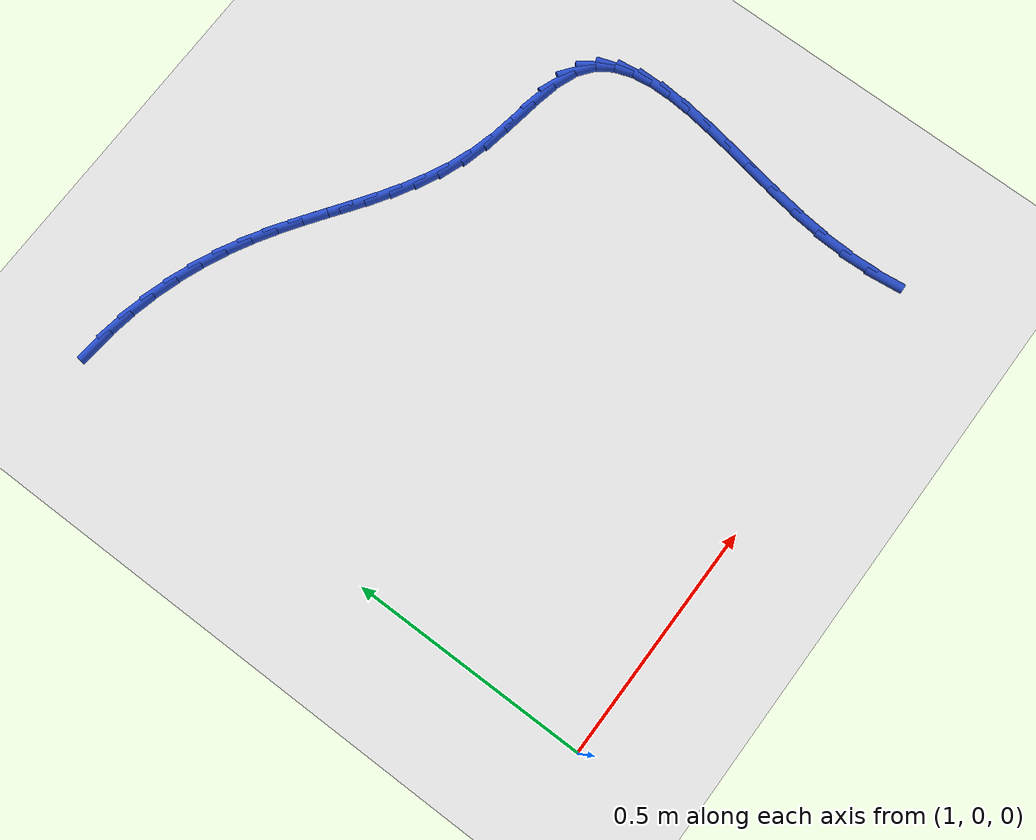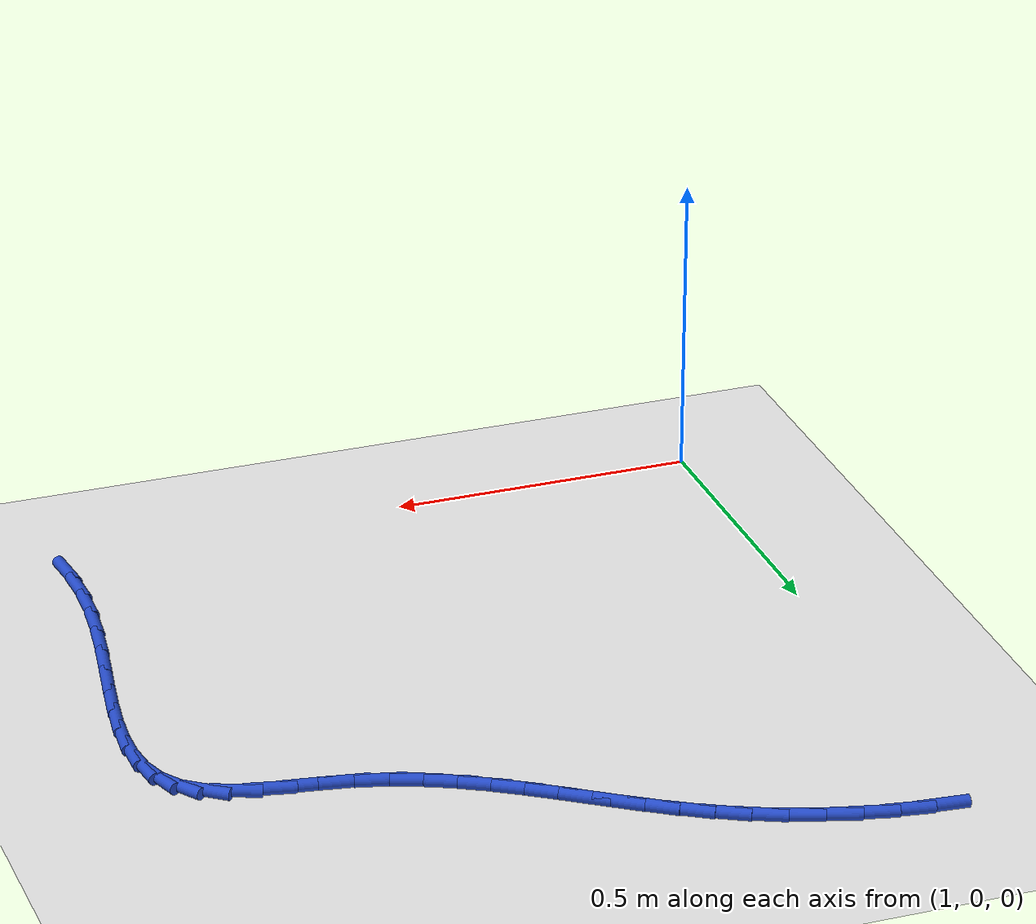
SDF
<sdf version="1.6">
 <world name="default">
  <model name="ground_plane">
   <static>1</static>
   <link name="link">
    <collision name="collision">
     <geometry><plane><normal>0 0 1</normal><size>100 100</size></plane></geometry>
     <surface><friction><ode><mu>100</mu><mu2>50</mu2></ode></friction></surface>
    </collision>
    <visual name="visual">
     <cast_shadows>0</cast_shadows>
     <geometry><plane><normal>0 0 1</normal><size>100 100</size></plane></geometry>
     <material>
      <script><uri>file://media/materials/scripts/gazebo.material</uri><name>Gazebo/WhiteGlow</name></script>
     </material>
    </visual>
   </link>
  </model>
  <model name="line">
   <link name="link_33">
    <pose>1.0553351704180698 1.191321392332432 0.01 0 1.57 -0.09032970323256534</pose>
    <collision name="collision">
     <geometry><cylinder><radius>0.01</radius><length>0.08</length></cylinder></geometry>
    </collision>
    <visual name="visual">
     <material>
      <script><name>Gazebo/Blue</name><uri>file://media/materials/scripts/gazebo.material</uri></script>
     </material>
     <geometry><cylinder><radius>0.01</radius><length>0.08</length></cylinder></geometry>
    </visual>
   </link>
   <link name="link_34">
    <pose>1.108643357472842 1.1864929399529782 0.01 0 1.57 -0.16590021703483696</pose>
    <collision name="collision">
     <geometry><cylinder><radius>0.01</radius><length>0.08</length></cylinder></geometry>
    </collision>
    <visual name="visual">
     <material>
      <script><name>Gazebo/Blue</name><uri>file://media/materials/scripts/gazebo.material</uri></script>
     </material>
     <geometry><cylinder><radius>0.01</radius><length>0.08</length></cylinder></geometry>
    </visual>
   </link>
   <link name="link_35">
    <pose>1.1620754404012217 1.177546315839418 0.01 0 1.57 -0.23645002435855425</pose>
    <collision name="collision">
     <geometry><cylinder><radius>0.01</radius><length>0.08</length></cylinder></geometry>
    </collision>
    <visual name="visual">
     <material>
      <script><name>Gazebo/Blue</name><uri>file://media/materials/scripts/gazebo.material</uri></script>
     </material>
     <geometry><cylinder><radius>0.01</radius><length>0.08</length></cylinder></geometry>
    </visual>
   </link>
   <link name="link_36">
    <pose>1.215140278457521 1.1647599513656912 0.01 0 1.57 -0.3034633733236827</pose>
    <collision name="collision">
     <geometry><cylinder><radius>0.01</radius><length>0.08</length></cylinder></geometry>
    </collision>
    <visual name="visual">
     <material>
      <script><name>Gazebo/Blue</name><uri>file://media/materials/scripts/gazebo.material</uri></script>
     </material>
     <geometry><cylinder><radius>0.01</radius><length>0.08</length></cylinder></geometry>
    </visual>
   </link>
   <link name="link_37">
    <pose>1.2673467308960529 1.1484122779057369 0.01 0 1.57 -0.3683756536316229</pose>
    <collision name="collision">
     <geometry><cylinder><radius>0.01</radius><length>0.08</length></cylinder></geometry>
    </collision>
    <visual name="visual">
     <material>
      <script><name>Gazebo/Blue</name><uri>file://media/materials/scripts/gazebo.material</uri></script>
     </material>
     <geometry><cylinder><radius>0.01</radius><length>0.08</length></cylinder></geometry>
    </visual>
   </link>
   <link name="link_38">
    <pose>1.318203656971129 1.1287817268334956 0.01 0 1.57 -0.43261140673777254</pose>
    <collision name="collision">
     <geometry><cylinder><radius>0.01</radius><length>0.08</length></cylinder></geometry>
    </collision>
    <visual name="visual">
     <material>
      <script><name>Gazebo/Blue</name><uri>file://media/materials/scripts/gazebo.material</uri></script>
     </material>
     <geometry><cylinder><radius>0.01</radius><length>0.08</length></cylinder></geometry>
    </visual>
   </link>
   <link name="link_39">
    <pose>1.3672199159370626 1.1061467295229064 0.01 0 1.57 -0.4964022953767984</pose>
    <collision name="collision">
     <geometry><cylinder><radius>0.01</radius><length>0.08</length></cylinder></geometry>
    </collision>
    <visual name="visual">
     <material>
      <script><name>Gazebo/Blue</name><uri>file://media/materials/scripts/gazebo.material</uri></script>
     </material>
     <geometry><cylinder><radius>0.01</radius><length>0.08</length></cylinder></geometry>
    </visual>
   </link>
   <link name="link_40">
    <pose>1.4139813918026618 1.0808188340793081 0.01 0 1.57 -0.5498269317807943</pose>
    <collision name="collision">
     <geometry><cylinder><radius>0.01</radius><length>0.08</length></cylinder></geometry>
    </collision>
    <visual name="visual">
     <material>
      <script><name>Gazebo/Blue</name><uri>file://media/materials/scripts/gazebo.material</uri></script>
     </material>
     <geometry><cylinder><radius>0.01</radius><length>0.08</length></cylinder></geometry>
    </visual>
   </link>
   <link name="link_41">
    <pose>1.458732143149102 1.0533925702373774 0.01 0 1.57 -0.5865311515154973</pose>
    <collision name="collision">
     <geometry><cylinder><radius>0.01</radius><length>0.08</length></cylinder></geometry>
    </collision>
    <visual name="visual">
     <material>
      <script><name>Gazebo/Blue</name><uri>file://media/materials/scripts/gazebo.material</uri></script>
     </material>
     <geometry><cylinder><radius>0.01</radius><length>0.08</length></cylinder></geometry>
    </visual>
   </link>
   <link name="link_42">
    <pose>1.5020500049786678 1.0246059746362601 0.01 0 1.57 -0.6056820950176903</pose>
    <collision name="collision">
     <geometry><cylinder><radius>0.01</radius><length>0.08</length></cylinder></geometry>
    </collision>
    <visual name="visual">
     <material>
      <script><name>Gazebo/Blue</name><uri>file://media/materials/scripts/gazebo.material</uri></script>
     </material>
     <geometry><cylinder><radius>0.01</radius><length>0.08</length></cylinder></geometry>
    </visual>
   </link>
   <link name="link_43">
    <pose>1.5445154217681598 0.9951982058565767 0.01 0 1.57 -0.6068085583690379</pose>
    <collision name="collision">
     <geometry><cylinder><radius>0.01</radius><length>0.08</length></cylinder></geometry>
    </collision>
    <visual name="visual">
     <material>
      <script><name>Gazebo/Blue</name><uri>file://media/materials/scripts/gazebo.material</uri></script>
     </material>
     <geometry><cylinder><radius>0.01</radius><length>0.08</length></cylinder></geometry>
    </visual>
   </link>
   <link name="link_44">
    <pose>1.5867088379943783 0.9659084224789467 0.01 0 1.57 -0.5895982876862703</pose>
    <collision name="collision">
     <geometry><cylinder><radius>0.01</radius><length>0.08</length></cylinder></geometry>
    </collision>
    <visual name="visual">
     <material>
      <script><name>Gazebo/Blue</name><uri>file://media/materials/scripts/gazebo.material</uri></script>
     </material>
     <geometry><cylinder><radius>0.01</radius><length>0.08</length></cylinder></geometry>
    </visual>
   </link>
   <link name="link_45">
    <pose>1.6292106981341241 0.937475783083991 0.01 0 1.57 -0.5538974760623594</pose>
    <collision name="collision">
     <geometry><cylinder><radius>0.01</radius><length>0.08</length></cylinder></geometry>
    </collision>
    <visual name="visual">
     <material>
      <script><name>Gazebo/Blue</name><uri>file://media/materials/scripts/gazebo.material</uri></script>
     </material>
     <geometry><cylinder><radius>0.01</radius><length>0.08</length></cylinder></geometry>
    </visual>
   </link>
   <link name="link_46">
    <pose>1.6726014466641979 0.9106394462523294 0.01 0 1.57 -0.4998918623525935</pose>
    <collision name="collision">
     <geometry><cylinder><radius>0.01</radius><length>0.08</length></cylinder></geometry>
    </collision>
    <visual name="visual">
     <material>
      <script><name>Gazebo/Blue</name><uri>file://media/materials/scripts/gazebo.material</uri></script>
     </material>
     <geometry><cylinder><radius>0.01</radius><length>0.08</length></cylinder></geometry>
    </visual>
   </link>
   <link name="link_47">
    <pose>1.7174615280613992 0.8861385705645821 0.01 0 1.57 -0.42845616905940254</pose>
    <collision name="collision">
     <geometry><cylinder><radius>0.01</radius><length>0.08</length></cylinder></geometry>
    </collision>
    <visual name="visual">
     <material>
      <script><name>Gazebo/Blue</name><uri>file://media/materials/scripts/gazebo.material</uri></script>
     </material>
     <geometry><cylinder><radius>0.01</radius><length>0.08</length></cylinder></geometry>
    </visual>
   </link>
   <link name="link_48">
    <pose>1.76437138680253 0.8647123146013692 0.01 0 1.57 -0.3415837140266836</pose>
    <collision name="collision">
     <geometry><cylinder><radius>0.01</radius><length>0.08</length></cylinder></geometry>
    </collision>
    <visual name="visual">
     <material>
      <script><name>Gazebo/Blue</name><uri>file://media/materials/scripts/gazebo.material</uri></script>
     </material>
     <geometry><cylinder><radius>0.01</radius><length>0.08</length></cylinder></geometry>
    </visual>
   </link>
   <link name="link_49">
    <pose>1.8139114673643901 0.8470998369433116 0.01 0 1.57 -0.2432140804673732</pose>
    <collision name="collision">
     <geometry><cylinder><radius>0.01</radius><length>0.08</length></cylinder></geometry>
    </collision>
    <visual name="visual">
     <material>
      <script><name>Gazebo/Blue</name><uri>file://media/materials/scripts/gazebo.material</uri></script>
     </material>
     <geometry><cylinder><radius>0.01</radius><length>0.08</length></cylinder></geometry>
    </visual>
   </link>
   <link name="link_50">
    <pose>1.866638337552057 0.8340169318866262 0.01 0 1.57 -0.166882925361371</pose>
    <collision name="collision">
     <geometry><cylinder><radius>0.01</radius><length>0.08</length></cylinder></geometry>
    </collision>
    <visual name="visual">
     <material>
      <script><name>Gazebo/Blue</name><uri>file://media/materials/scripts/gazebo.material</uri></script>
     </material>
     <geometry><cylinder><radius>0.01</radius><length>0.08</length></cylinder></geometry>
    </visual>
   </link>
   <link name="link_51">
    <pose>1.9216483522651584 0.8247505166207728 0.01 0 1.57 -0.15389126715999707</pose>
    <collision name="collision">
     <geometry><cylinder><radius>0.01</radius><length>0.08</length></cylinder></geometry>
    </collision>
    <visual name="visual">
     <material>
      <script><name>Gazebo/Blue</name><uri>file://media/materials/scripts/gazebo.material</uri></script>
     </material>
     <geometry><cylinder><radius>0.01</radius><length>0.08</length></cylinder></geometry>
    </visual>
   </link>
   <link name="link_52">
    <pose>1.9757585147408832 0.8163570709814785 0.01 0 1.57 -0.21070930052542367</pose>
    <collision name="collision">
     <geometry><cylinder><radius>0.01</radius><length>0.08</length></cylinder></geometry>
    </collision>
    <visual name="visual">
     <material>
      <script><name>Gazebo/Blue</name><uri>file://media/materials/scripts/gazebo.material</uri></script>
     </material>
     <geometry><cylinder><radius>0.01</radius><length>0.08</length></cylinder></geometry>
    </visual>
   </link>
   <link name="link_53">
    <pose>2.0255878703610293 0.8056993650744643 0.01 0 1.57 -0.36388266815558895</pose>
    <collision name="collision">
     <geometry><cylinder><radius>0.01</radius><length>0.08</length></cylinder></geometry>
    </collision>
    <visual name="visual">
     <material>
      <script><name>Gazebo/Blue</name><uri>file://media/materials/scripts/gazebo.material</uri></script>
     </material>
     <geometry><cylinder><radius>0.01</radius><length>0.08</length></cylinder></geometry>
    </visual>
   </link>
   <link name="link_54">
    <pose>2.067755464507398 0.7896401690054519 0.01 0 1.57 -0.6471197565963764</pose>
    <collision name="collision">
     <geometry><cylinder><radius>0.01</radius><length>0.08</length></cylinder></geometry>
    </collision>
    <visual name="visual">
     <material>
      <script><name>Gazebo/Blue</name><uri>file://media/materials/scripts/gazebo.material</uri></script>
     </material>
     <geometry><cylinder><radius>0.01</radius><length>0.08</length></cylinder></geometry>
    </visual>
   </link>
   <link name="link_55">
    <pose>2.0995490879622016 0.7656146959078071 0.01 0 1.57 -0.9707340508960112</pose>
    <collision name="collision">
     <geometry><cylinder><radius>0.01</radius><length>0.08</length></cylinder></geometry>
    </collision>
    <visual name="visual">
     <material>
      <script><name>Gazebo/Blue</name><uri>file://media/materials/scripts/gazebo.material</uri></script>
     </material>
     <geometry><cylinder><radius>0.01</radius><length>0.08</length></cylinder></geometry>
    </visual>
   </link>
   <link name="link_56">
    <pose>2.1213700627127334 0.7337233274956491 0.01 0 1.57 -1.2445515457175276</pose>
    <collision name="collision">
     <geometry><cylinder><radius>0.01</radius><length>0.08</length></cylinder></geometry>
    </collision>
    <visual name="visual">
     <material>
      <script><name>Gazebo/Blue</name><uri>file://media/materials/scripts/gazebo.material</uri></script>
     </material>
     <geometry><cylinder><radius>0.01</radius><length>0.08</length></cylinder></geometry>
    </visual>
   </link>
   <link name="link_57">
    <pose>2.134525130690281 0.6948414808458958 0.01 0 1.57 -1.4426925245071953</pose>
    <collision name="collision">
     <geometry><cylinder><radius>0.01</radius><length>0.08</length></cylinder></geometry>
    </collision>
    <visual name="visual">
     <material>
      <script><name>Gazebo/Blue</name><uri>file://media/materials/scripts/gazebo.material</uri></script>
     </material>
     <geometry><cylinder><radius>0.01</radius><length>0.08</length></cylinder></geometry>
    </visual>
   </link>
   <link name="link_58">
    <pose>2.1403211346295112 0.6498446593227035 0.01 0 1.57 1.5656961267727911</pose>
    <collision name="collision">
     <geometry><cylinder><radius>0.01</radius><length>0.08</length></cylinder></geometry>
    </collision>
    <visual name="visual">
     <material>
      <script><name>Gazebo/Blue</name><uri>file://media/materials/scripts/gazebo.material</uri></script>
     </material>
     <geometry><cylinder><radius>0.01</radius><length>0.08</length></cylinder></geometry>
    </visual>
   </link>
   <link name="link_59">
    <pose>2.140064917265094 0.5996083662902271 0.01 0 1.57 1.4794473858550248</pose>
    <collision name="collision">
     <geometry><cylinder><radius>0.01</radius><length>0.08</length></cylinder></geometry>
    </collision>
    <visual name="visual">
     <material>
      <script><name>Gazebo/Blue</name><uri>file://media/materials/scripts/gazebo.material</uri></script>
     </material>
     <geometry><cylinder><radius>0.01</radius><length>0.08</length></cylinder></geometry>
    </visual>
   </link>
   <link name="link_60">
    <pose>2.135063321331697 0.5450081051126229 0.01 0 1.57 1.4265087946099895</pose>
    <collision name="collision">
     <geometry><cylinder><radius>0.01</radius><length>0.08</length></cylinder></geometry>
    </collision>
    <visual name="visual">
     <material>
      <script><name>Gazebo/Blue</name><uri>file://media/materials/scripts/gazebo.material</uri></script>
     </material>
     <geometry><cylinder><radius>0.01</radius><length>0.08</length></cylinder></geometry>
    </visual>
   </link>
   <link name="link_61">
    <pose>2.126623189563988 0.48691937915404554 0.01 0 1.57 1.398365512150488</pose>
    <collision name="collision">
     <geometry><cylinder><radius>0.01</radius><length>0.08</length></cylinder></geometry>
    </collision>
    <visual name="visual">
     <material>
      <script><name>Gazebo/Blue</name><uri>file://media/materials/scripts/gazebo.material</uri></script>
     </material>
     <geometry><cylinder><radius>0.01</radius><length>0.08</length></cylinder></geometry>
    </visual>
   </link>
   <link name="link_62">
    <pose>2.1160513646966352 0.4262176917786517 0.01 0 1.57 1.390259173887569</pose>
    <collision name="collision">
     <geometry><cylinder><radius>0.01</radius><length>0.08</length></cylinder></geometry>
    </collision>
    <visual name="visual">
     <material>
      <script><name>Gazebo/Blue</name><uri>file://media/materials/scripts/gazebo.material</uri></script>
     </material>
     <geometry><cylinder><radius>0.01</radius><length>0.08</length></cylinder></geometry>
    </visual>
   </link>
   <link name="link_63">
    <pose>2.104654689464308 0.3637785463505958 0.01 0 1.57 1.4000503750262838</pose>
    <collision name="collision">
     <geometry><cylinder><radius>0.01</radius><length>0.08</length></cylinder></geometry>
    </collision>
    <visual name="visual">
     <material>
      <script><name>Gazebo/Blue</name><uri>file://media/materials/scripts/gazebo.material</uri></script>
     </material>
     <geometry><cylinder><radius>0.01</radius><length>0.08</length></cylinder></geometry>
    </visual>
   </link>
   <link name="link_64">
    <pose>2.0937400066016734 0.3004774462340348 0.01 0 1.57 1.4275868817317294</pose>
    <collision name="collision">
     <geometry><cylinder><radius>0.01</radius><length>0.08</length></cylinder></geometry>
    </collision>
    <visual name="visual">
     <material>
      <script><name>Gazebo/Blue</name><uri>file://media/materials/scripts/gazebo.material</uri></script>
     </material>
     <geometry><cylinder><radius>0.01</radius><length>0.08</length></cylinder></geometry>
    </visual>
   </link>
   <link name="link_65">
    <pose>2.084614158843401 0.23718989479312325 0.01 0 1.57 1.4744558362066011</pose>
    <collision name="collision">
     <geometry><cylinder><radius>0.01</radius><length>0.08</length></cylinder></geometry>
    </collision>
    <visual name="visual">
     <material>
      <script><name>Gazebo/Blue</name><uri>file://media/materials/scripts/gazebo.material</uri></script>
     </material>
     <geometry><cylinder><radius>0.01</radius><length>0.08</length></cylinder></geometry>
    </visual>
   </link>
   <link name="link_66">
    <pose>2.0785839889241577 0.1747913953920166 0.01 0 1.57 1.5422083655668473</pose>
    <collision name="collision">
     <geometry><cylinder><radius>0.01</radius><length>0.08</length></cylinder></geometry>
    </collision>
    <visual name="visual">
     <material>
      <script><name>Gazebo/Blue</name><uri>file://media/materials/scripts/gazebo.material</uri></script>
     </material>
     <geometry><cylinder><radius>0.01</radius><length>0.08</length></cylinder></geometry>
    </visual>
   </link>
   <link name="link_67">
    <pose>2.0768485553911393 0.11410288668913293 0.01 0 1.57 -1.5268667878665663</pose>
    <collision name="collision">
     <geometry><cylinder><radius>0.01</radius><length>0.08</length></cylinder></geometry>
    </collision>
    <visual name="visual">
     <material>
      <script><name>Gazebo/Blue</name><uri>file://media/materials/scripts/gazebo.material</uri></script>
     </material>
     <geometry><cylinder><radius>0.01</radius><length>0.08</length></cylinder></geometry>
    </visual>
   </link>
   <link name="link_68">
    <pose>2.0794311992545293 0.055350111675121834 0.01 0 1.57 -1.4623582555347123</pose>
    <collision name="collision">
     <geometry><cylinder><radius>0.01</radius><length>0.08</length></cylinder></geometry>
    </collision>
    <visual name="visual">
     <material>
      <script><name>Gazebo/Blue</name><uri>file://media/materials/scripts/gazebo.material</uri></script>
     </material>
     <geometry><cylinder><radius>0.01</radius><length>0.08</length></cylinder></geometry>
    </visual>
   </link>
  </model>
 </world>
</sdf>
